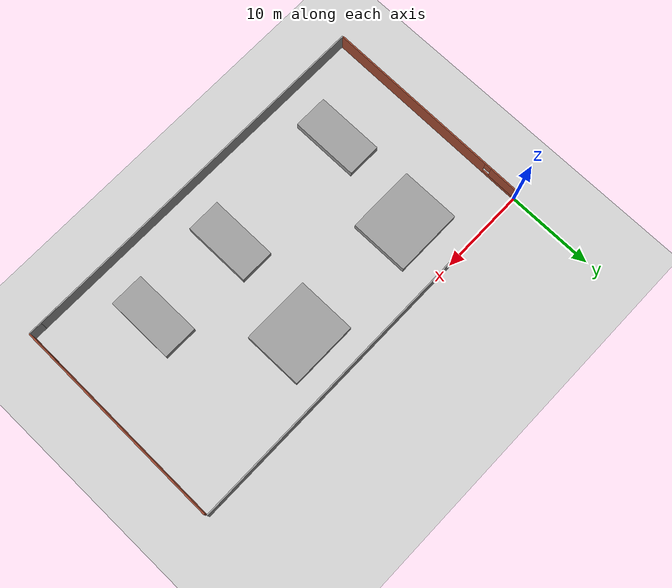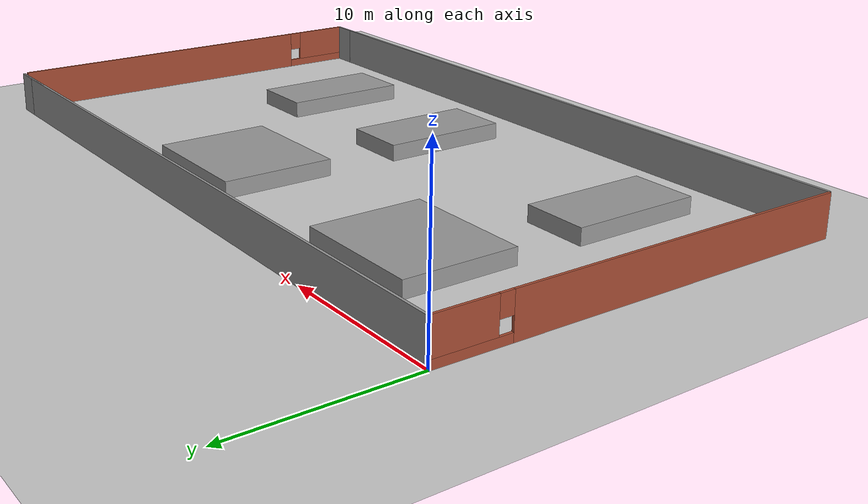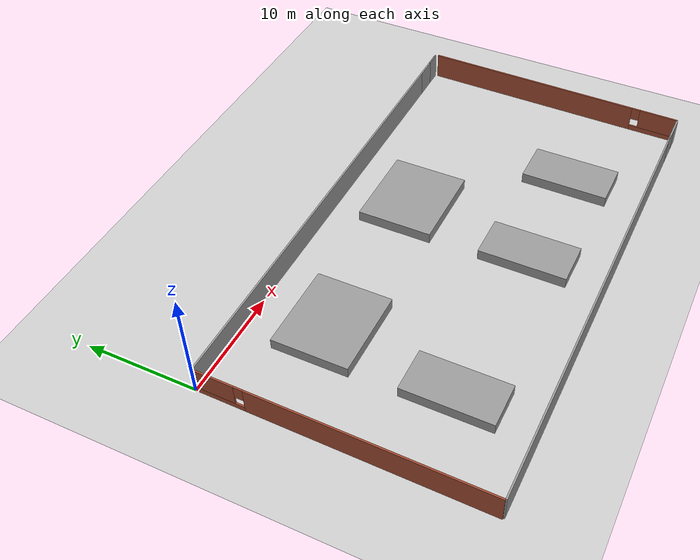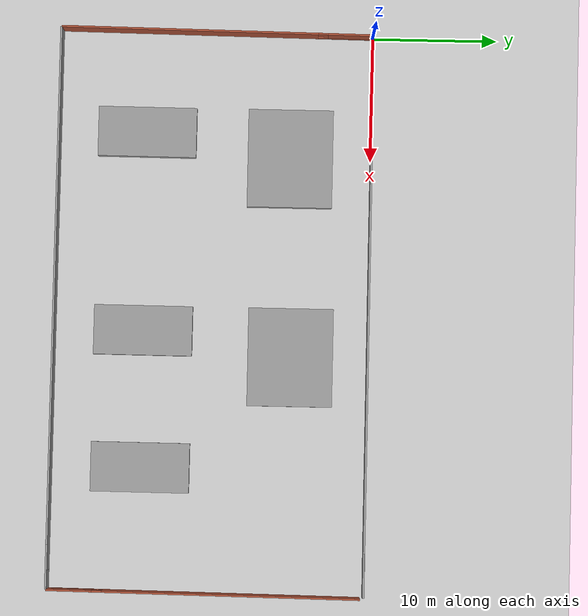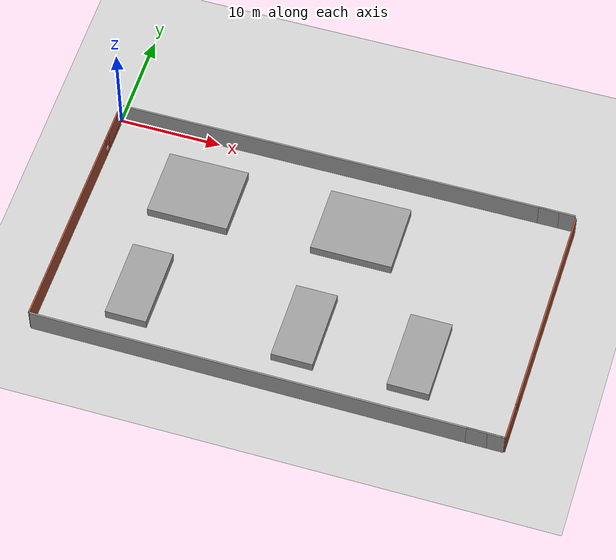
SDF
<sdf version="1.7">
 <world name="default">
  <light name="sun" type="directional">
   <pose>0 0 10 0 -0 0</pose>
   <diffuse>0.8 0.8 0.8 1</diffuse>
   <specular>0.2 0.2 0.2 1</specular>
   <attenuation>
    <range>1000</range>
    <constant>0.9</constant>
    <linear>0.01</linear>
    <quadratic>0.001</quadratic>
   </attenuation>
   <direction>-0.5 0.1 -0.9</direction>
   <spot><inner_angle>0</inner_angle><outer_angle>0</outer_angle><falloff>0</falloff></spot>
  </light>
  <model name="ground_plane">
   <static>1</static>
   <link name="link">
    <collision name="collision">
     <geometry><plane><normal>0 0 1</normal><size>100 100</size></plane></geometry>
     <surface>
      <contact><collide_bitmask>65535</collide_bitmask></contact>
      <friction><ode><mu>100</mu><mu2>50</mu2></ode></friction>
     </surface>
    </collision>
    <visual name="visual">
     <cast_shadows>0</cast_shadows>
     <geometry><plane><normal>0 0 1</normal><size>100 100</size></plane></geometry>
     <material>
      <script><uri>file://media/materials/scripts/gazebo.material</uri><name>Gazebo/Grey</name></script>
     </material>
    </visual>
   </link>
  </model>
  <gravity>0 0 -9.8</gravity>
  <magnetic_field>6e-06 2.3e-05 -4.2e-05</magnetic_field>
  <atmosphere type="adiabatic"/>
  <physics type="ode">
   <max_step_size>0.001</max_step_size>
   <real_time_factor>1</real_time_factor>
   <real_time_update_rate>1000</real_time_update_rate>
  </physics>
  <scene><ambient>0.4 0.4 0.4 1</ambient><background>0.7 0.7 0.7 1</background><shadows>1</shadows></scene>
  <spherical_coordinates>
   <surface_model>EARTH_WGS84</surface_model>
   <latitude_deg>0</latitude_deg>
   <longitude_deg>0</longitude_deg>
   <elevation>0</elevation>
   <heading_deg>0</heading_deg>
  </spherical_coordinates>
  <model name="Warehouse_PRM">
   <pose>-0.13085 -12.4757 0 0 -0 1.72091</pose>
   <link name="Wall_0">
    <pose>-0 -0.046739 0 0 -0 -0.1599</pose>
    <visual name="Wall_0_Visual_0">
     <pose>-2.21857 0 1.25 0 -0 0</pose>
     <geometry><box><size>20.5629 0.15 2.5</size></box></geometry>
     <material>
      <script><uri>file://media/materials/scripts/gazebo.material</uri><name>Gazebo/Bricks</name></script>
      <ambient>1 0.764706 0.305882 1</ambient>
     </material>
     <meta><layer>0</layer></meta>
    </visual>
    <collision name="Wall_0_Collision_0">
     <geometry><box><size>20.5629 0.15 2.5</size></box></geometry>
     <pose>-2.21857 0 1.25 0 -0 0</pose>
    </collision>
    <visual name="Wall_0_Visual_1">
     <pose>10.2814 0 0.25 0 -0 0</pose>
     <geometry><box><size>4.43714 0.15 0.5</size></box></geometry>
     <material>
      <script><uri>file://media/materials/scripts/gazebo.material</uri><name>Gazebo/Bricks</name></script>
      <ambient>1 0.764706 0.305882 1</ambient>
     </material>
     <meta><layer>0</layer></meta>
    </visual>
    <collision name="Wall_0_Collision_1">
     <geometry><box><size>4.43714 0.15 0.5</size></box></geometry>
     <pose>10.2814 0 0.25 0 -0 0</pose>
    </collision>
    <visual name="Wall_0_Visual_2">
     <pose>10.6814 0 1.5 0 -0 0</pose>
     <geometry><box><size>3.63714 0.15 2</size></box></geometry>
     <material>
      <script><uri>file://media/materials/scripts/gazebo.material</uri><name>Gazebo/Bricks</name></script>
      <ambient>1 0.764706 0.305882 1</ambient>
     </material>
     <meta><layer>0</layer></meta>
    </visual>
    <collision name="Wall_0_Collision_2">
     <geometry><box><size>3.63714 0.15 2</size></box></geometry>
     <pose>10.6814 0 1.5 0 -0 0</pose>
    </collision>
    <visual name="Wall_0_Visual_3">
     <pose>8.46286 0 1.9 0 -0 0</pose>
     <geometry><box><size>0.8 0.15 1.2</size></box></geometry>
     <material>
      <script><uri>file://media/materials/scripts/gazebo.material</uri><name>Gazebo/Bricks</name></script>
      <ambient>1 0.764706 0.305882 1</ambient>
     </material>
     <meta><layer>0</layer></meta>
    </visual>
    <collision name="Wall_0_Collision_3">
     <geometry><box><size>0.8 0.15 1.2</size></box></geometry>
     <pose>8.46286 0 1.9 0 -0 0</pose>
    </collision>
   </link>
   <static>1</static>
  </model>
  <model name="Warehouse_PRM_clone">
   <pose>45.0503 -12.697 0 0 0 -1.42124</pose>
   <link name="Wall_0">
    <pose>-0 -0.046739 0 0 -0 -0.1599</pose>
    <visual name="Wall_0_Visual_0">
     <pose>-2.21857 0 1.25 0 -0 0</pose>
     <geometry><box><size>20.5629 0.15 2.5</size></box></geometry>
     <material>
      <script><uri>file://media/materials/scripts/gazebo.material</uri><name>Gazebo/Bricks</name></script>
      <ambient>1 0.764706 0.305882 1</ambient>
     </material>
     <meta><layer>0</layer></meta>
    </visual>
    <collision name="Wall_0_Collision_0">
     <geometry><box><size>20.5629 0.15 2.5</size></box></geometry>
     <pose>-2.21857 0 1.25 0 -0 0</pose>
    </collision>
    <visual name="Wall_0_Visual_1">
     <pose>10.2814 0 0.25 0 -0 0</pose>
     <geometry><box><size>4.43714 0.15 0.5</size></box></geometry>
     <material>
      <script><uri>file://media/materials/scripts/gazebo.material</uri><name>Gazebo/Bricks</name></script>
      <ambient>1 0.764706 0.305882 1</ambient>
     </material>
     <meta><layer>0</layer></meta>
    </visual>
    <collision name="Wall_0_Collision_1">
     <geometry><box><size>4.43714 0.15 0.5</size></box></geometry>
     <pose>10.2814 0 0.25 0 -0 0</pose>
    </collision>
    <visual name="Wall_0_Visual_2">
     <pose>10.6814 0 1.5 0 -0 0</pose>
     <geometry><box><size>3.63714 0.15 2</size></box></geometry>
     <material>
      <script><uri>file://media/materials/scripts/gazebo.material</uri><name>Gazebo/Bricks</name></script>
      <ambient>1 0.764706 0.305882 1</ambient>
     </material>
     <meta><layer>0</layer></meta>
    </visual>
    <collision name="Wall_0_Collision_2">
     <geometry><box><size>3.63714 0.15 2</size></box></geometry>
     <pose>10.6814 0 1.5 0 -0 0</pose>
    </collision>
    <visual name="Wall_0_Visual_3">
     <pose>8.46286 0 1.9 0 -0 0</pose>
     <geometry><box><size>0.8 0.15 1.2</size></box></geometry>
     <material>
      <script><uri>file://media/materials/scripts/gazebo.material</uri><name>Gazebo/Bricks</name></script>
      <ambient>1 0.764706 0.305882 1</ambient>
     </material>
     <meta><layer>0</layer></meta>
    </visual>
    <collision name="Wall_0_Collision_3">
     <geometry><box><size>0.8 0.15 1.2</size></box></geometry>
     <pose>8.46286 0 1.9 0 -0 0</pose>
    </collision>
   </link>
   <static>1</static>
  </model>
  <model name="PRM_wall2">
   <pose>22.367 -15.0474 0 0 -0 1.56629</pose>
   <link name="Wall_7">
    <collision name="Wall_7_Collision">
     <geometry><box><size>45 0.15 2.5</size></box></geometry>
     <pose>0 0 1.25 0 -0 0</pose>
    </collision>
    <visual name="Wall_7_Visual">
     <pose>0 0 1.25 0 -0 0</pose>
     <geometry><box><size>45 0.15 2.5</size></box></geometry>
     <material>
      <script><uri>file://media/materials/scripts/gazebo.material</uri><name>Gazebo/Grey</name></script>
      <ambient>1 1 1 1</ambient>
     </material>
     <meta><layer>0</layer></meta>
    </visual>
    <pose>-10.0674 -0 0 0 -0 -1.5708</pose>
   </link>
   <link name="Wall_8">
    <collision name="Wall_8_Collision">
     <geometry><box><size>3.55 0.15 2.5</size></box></geometry>
     <pose>0 0 1.25 0 -0 0</pose>
    </collision>
    <visual name="Wall_8_Visual">
     <pose>0 0 1.25 0 -0 0</pose>
     <geometry><box><size>3.55 0.15 2.5</size></box></geometry>
     <material>
      <script><uri>file://media/materials/scripts/gazebo.material</uri><name>Gazebo/Grey</name></script>
      <ambient>1 1 1 1</ambient>
     </material>
     <meta><layer>0</layer></meta>
    </visual>
    <pose>-10.0675 -20.7249 0 0 -0 1.57088</pose>
   </link>
   <static>1</static>
  </model>
  <model name="PRM_wall2_clone">
   <pose>22.5178 10.1216 -0 0 -0 1.57163</pose>
   <link name="Wall_7">
    <collision name="Wall_7_Collision">
     <geometry><box><size>45 0.15 2.5</size></box></geometry>
     <pose>0 0 1.25 0 -0 0</pose>
    </collision>
    <visual name="Wall_7_Visual">
     <pose>0 0 1.25 0 -0 0</pose>
     <geometry><box><size>45 0.15 2.5</size></box></geometry>
     <material>
      <script><uri>file://media/materials/scripts/gazebo.material</uri><name>Gazebo/Grey</name></script>
      <ambient>1 1 1 1</ambient>
     </material>
     <meta><layer>0</layer></meta>
    </visual>
    <pose>-10.0674 -0 0 0 -0 -1.5708</pose>
   </link>
   <link name="Wall_8">
    <collision name="Wall_8_Collision">
     <geometry><box><size>3.55 0.15 2.5</size></box></geometry>
     <pose>0 0 1.25 0 -0 0</pose>
    </collision>
    <visual name="Wall_8_Visual">
     <pose>0 0 1.25 0 -0 0</pose>
     <geometry><box><size>3.55 0.15 2.5</size></box></geometry>
     <material>
      <script><uri>file://media/materials/scripts/gazebo.material</uri><name>Gazebo/Grey</name></script>
      <ambient>1 1 1 1</ambient>
     </material>
     <meta><layer>0</layer></meta>
    </visual>
    <pose>-10.0675 -20.7249 0 0 -0 1.57088</pose>
   </link>
   <static>1</static>
  </model>
  <model name="unit_box_clone">
   <pose>8 -18 0.5 0 -0 1.56724</pose>
   <link name="link">
    <inertial>
     <mass>1</mass>
     <inertia>
      <ixx>0.166667</ixx>
      <ixy>0</ixy>
      <ixz>0</ixz>
      <iyy>0.166667</iyy>
      <iyz>0</iyz>
      <izz>0.166667</izz>
     </inertia>
    </inertial>
    <collision name="collision"><geometry><box><size>7.91184 3.98624 1</size></box></geometry></collision>
    <visual name="visual">
     <geometry><box><size>7.91184 3.98624 1</size></box></geometry>
     <material>
      <script><name>Gazebo/Grey</name><uri>file://media/materials/scripts/gazebo.material</uri></script>
     </material>
    </visual>
   </link>
   <static>1</static>
  </model>
  <model name="unit_box_clone_clone">
   <pose>24 -18 0.5 0 -0 1.56724</pose>
   <link name="link">
    <inertial>
     <mass>1</mass>
     <inertia>
      <ixx>0.166667</ixx>
      <ixy>0</ixy>
      <ixz>0</ixz>
      <iyy>0.166667</iyy>
      <iyz>0</iyz>
      <izz>0.166667</izz>
     </inertia>
    </inertial>
    <collision name="collision"><geometry><box><size>7.91184 3.98624 1</size></box></geometry></collision>
    <visual name="visual">
     <geometry><box><size>7.91184 3.98624 1</size></box></geometry>
     <material>
      <script><name>Gazebo/Grey</name><uri>file://media/materials/scripts/gazebo.material</uri></script>
     </material>
    </visual>
   </link>
   <static>1</static>
  </model>
  <model name="unit_box_clone_clone_clone">
   <pose>35 -18 0.5 0 -0 1.56724</pose>
   <link name="link">
    <inertial>
     <mass>1</mass>
     <inertia>
      <ixx>0.166667</ixx>
      <ixy>0</ixy>
      <ixz>0</ixz>
      <iyy>0.166667</iyy>
      <iyz>0</iyz>
      <izz>0.166667</izz>
     </inertia>
    </inertial>
    <collision name="collision"><geometry><box><size>7.91184 3.98624 1</size></box></geometry></collision>
    <visual name="visual">
     <geometry><box><size>7.91184 3.98624 1</size></box></geometry>
     <material>
      <script><name>Gazebo/Grey</name><uri>file://media/materials/scripts/gazebo.material</uri></script>
     </material>
    </visual>
   </link>
   <static>1</static>
  </model>
  <model name="unit_box">
   <pose>9.93556 -6.45973 0.5 0 -0 0</pose>
   <link name="link">
    <inertial>
     <mass>1</mass>
     <inertia>
      <ixx>0.166667</ixx>
      <ixy>0</ixy>
      <ixz>0</ixz>
      <iyy>0.166667</iyy>
      <iyz>0</iyz>
      <izz>0.166667</izz>
     </inertia>
    </inertial>
    <collision name="collision"><geometry><box><size>7.88303 6.82499 1</size></box></geometry></collision>
    <visual name="visual">
     <geometry><box><size>7.88303 6.82499 1</size></box></geometry>
     <material>
      <script><name>Gazebo/Grey</name><uri>file://media/materials/scripts/gazebo.material</uri></script>
     </material>
    </visual>
   </link>
   <static>1</static>
  </model>
  <model name="unit_box_clone_0">
   <pose>25.9493 -6.13733 0.5 0 -0 0</pose>
   <link name="link">
    <inertial>
     <mass>1</mass>
     <inertia>
      <ixx>0.166667</ixx>
      <ixy>0</ixy>
      <ixz>0</ixz>
      <iyy>0.166667</iyy>
      <iyz>0</iyz>
      <izz>0.166667</izz>
     </inertia>
    </inertial>
    <collision name="collision"><geometry><box><size>7.88303 6.82499 1</size></box></geometry></collision>
    <visual name="visual">
     <geometry><box><size>7.88303 6.82499 1</size></box></geometry>
     <material>
      <script><name>Gazebo/Grey</name><uri>file://media/materials/scripts/gazebo.material</uri></script>
     </material>
    </visual>
   </link>
   <static>1</static>
  </model>
 </world>
</sdf>
